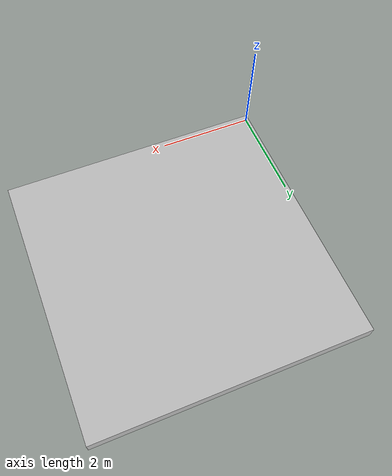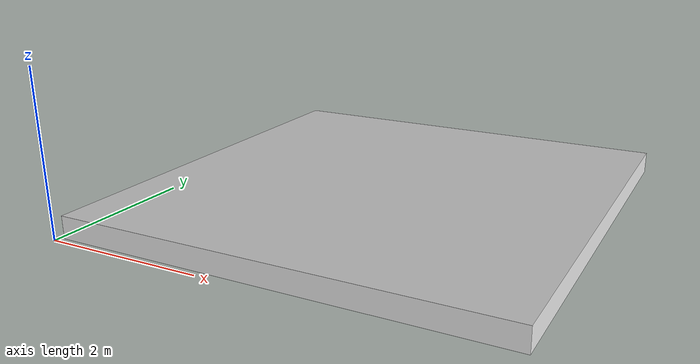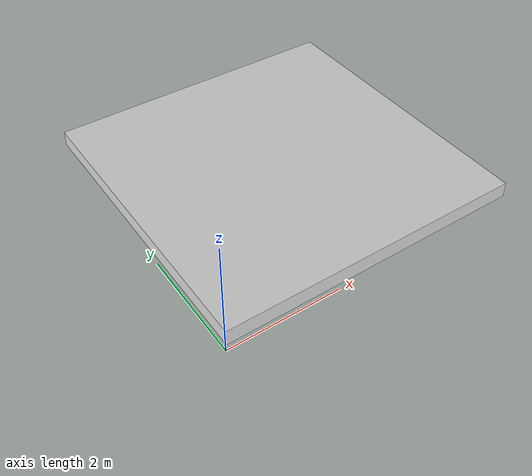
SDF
<?xml version='1.0'?>
<sdf version='1.5'>
  <model name='aruco_visual_marker_0'>

    <link name='marker'>
      <visual name="visual">
        <geometry>
          <mesh>
            <uri>model://4x4_aruco_maker/meshes/4x4_aruco_maker_0.dae</uri>
          </mesh>
        </geometry>
      </visual>
    </link>
  </model>
</sdf>
